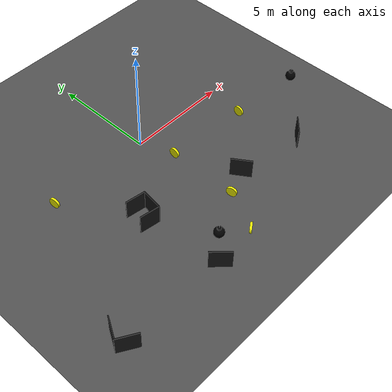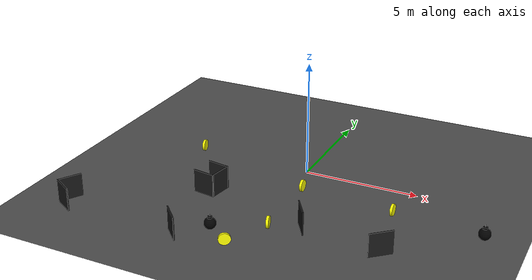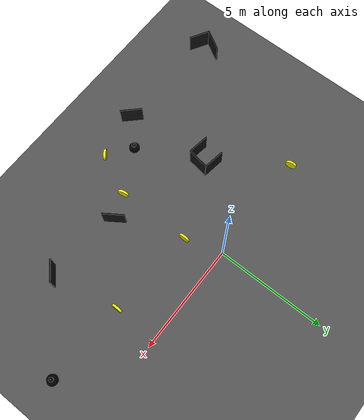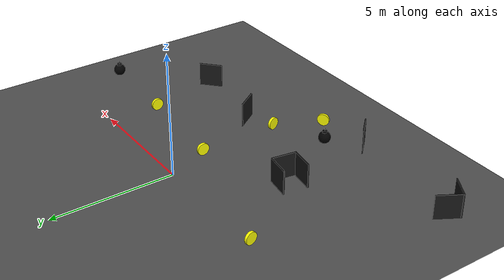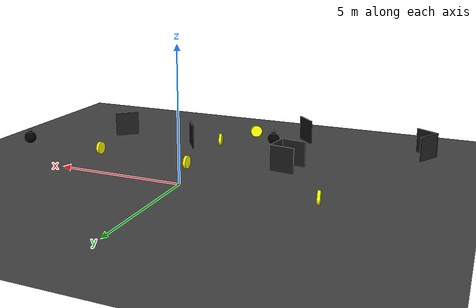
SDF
<sdf version="1.6">
 <world name="default">
  <model name="labrob_ground">
   <static>1</static>
   <link name="link">
    <collision name="collision">
     <geometry><plane><normal>0 0 1</normal><size>20 20</size></plane></geometry>
     <surface><contact><collide_bitmask>2</collide_bitmask></contact></surface>
    </collision>
    <visual name="visual">
     <cast_shadows>0</cast_shadows>
     <geometry><plane><normal>0 0 1</normal><size>20 20</size></plane></geometry>
     <material>
      <script>
       <uri>model://labrob_ground/materials/scripts/</uri>
       <uri>model://labrob_ground/materials/textures/</uri>
       <name>Labrob/AsphaltGround</name>
      </script>
     </material>
    </visual>
   </link>
  </model>
  <model name="coin_1">
   <link name="chassis">
    <pose>0 0 0.26 0 -0 0</pose>
    <collision name="box_collision">
     <geometry><sphere><radius>0.25</radius></sphere></geometry>
     <surface>
      <contact><collide_bitmask>1</collide_bitmask><ode><min_depth>10</min_depth><kp>1</kp></ode></contact>
     </surface>
    </collision>
    <visual name="visual">
     <pose>0 0 0 0 1.57 0</pose>
     <geometry><cylinder><radius>0.25</radius><length>0.1</length></cylinder></geometry>
     <material>
      <ambient>1 1 0 1</ambient>
      <diffuse>1 1 0 1</diffuse>
      <specular>0.1 0.1 0.1 1</specular>
      <emissive>0 0 0 0</emissive>
     </material>
    </visual>
    <sensor name="contact_sensor_1" type="contact">
     <plugin name="my_contact_plugin" filename="libgazebo_ros_bumper.so">
      <bumperTopicName>coin_bumper</bumperTopicName>
      <frameName>world</frameName>
     </plugin>
     <contact><collision>box_collision</collision><topic>__default_topic__</topic></contact>
    </sensor>
    <inertial>
     <inertia><ixx>1</ixx><ixy>0</ixy><ixz>0</ixz><iyy>1</iyy><iyz>0</iyz><izz>1</izz></inertia>
     <mass>1</mass>
    </inertial>
   </link>
   <joint name="coin_hinge" type="revolute">
    <pose>0 0 0.26 0 -0 0</pose>
    <child>chassis</child>
    <parent>world</parent>
    <axis>
     <xyz>0 0 1</xyz>
     <use_parent_model_frame>1</use_parent_model_frame>
     <limit><lower>-1e+16</lower><upper>1e+16</upper></limit>
     <dynamics><spring_reference>0</spring_reference><spring_stiffness>0</spring_stiffness></dynamics>
    </axis>
   </joint>
   <pose>0.535499 -1.67279 0 0 0 -3.13571</pose>
  </model>
  <model name="coin_2">
   <link name="chassis">
    <pose>0 0 0.26 0 -0 0</pose>
    <collision name="box_collision">
     <geometry><sphere><radius>0.25</radius></sphere></geometry>
     <surface>
      <contact><collide_bitmask>1</collide_bitmask><ode><min_depth>10</min_depth><kp>1</kp></ode></contact>
     </surface>
    </collision>
    <visual name="visual">
     <pose>0 0 0 0 1.57 0</pose>
     <geometry><cylinder><radius>0.25</radius><length>0.1</length></cylinder></geometry>
     <material>
      <ambient>1 1 0 1</ambient>
      <diffuse>1 1 0 1</diffuse>
      <specular>0.1 0.1 0.1 1</specular>
      <emissive>0 0 0 0</emissive>
     </material>
    </visual>
    <sensor name="contact_sensor_1" type="contact">
     <plugin name="my_contact_plugin" filename="libgazebo_ros_bumper.so">
      <bumperTopicName>coin_bumper</bumperTopicName>
      <frameName>world</frameName>
     </plugin>
     <contact><collision>box_collision</collision><topic>__default_topic__</topic></contact>
    </sensor>
    <inertial>
     <inertia><ixx>1</ixx><ixy>0</ixy><ixz>0</ixz><iyy>1</iyy><iyz>0</iyz><izz>1</izz></inertia>
     <mass>1</mass>
    </inertial>
   </link>
   <joint name="coin_hinge" type="revolute">
    <pose>0 0 0.26 0 -0 0</pose>
    <child>chassis</child>
    <parent>world</parent>
    <axis>
     <xyz>0 0 1</xyz>
     <use_parent_model_frame>1</use_parent_model_frame>
     <limit><lower>-1e+16</lower><upper>1e+16</upper></limit>
     <dynamics><spring_reference>0</spring_reference><spring_stiffness>0</spring_stiffness></dynamics>
    </axis>
   </joint>
   <pose>0.581038 -5.03889 0 0 0 -2.89527</pose>
  </model>
  <model name="coin_3">
   <link name="chassis">
    <pose>0 0 0.26 0 -0 0</pose>
    <collision name="box_collision">
     <geometry><sphere><radius>0.25</radius></sphere></geometry>
     <surface>
      <contact><collide_bitmask>1</collide_bitmask><ode><min_depth>10</min_depth><kp>1</kp></ode></contact>
     </surface>
    </collision>
    <visual name="visual">
     <pose>0 0 0 0 1.57 0</pose>
     <geometry><cylinder><radius>0.25</radius><length>0.1</length></cylinder></geometry>
     <material>
      <ambient>1 1 0 1</ambient>
      <diffuse>1 1 0 1</diffuse>
      <specular>0.1 0.1 0.1 1</specular>
      <emissive>0 0 0 0</emissive>
     </material>
    </visual>
    <sensor name="contact_sensor_1" type="contact">
     <plugin name="my_contact_plugin" filename="libgazebo_ros_bumper.so">
      <bumperTopicName>coin_bumper</bumperTopicName>
      <frameName>world</frameName>
     </plugin>
     <contact><collision>box_collision</collision><topic>__default_topic__</topic></contact>
    </sensor>
    <inertial>
     <inertia><ixx>1</ixx><ixy>0</ixy><ixz>0</ixz><iyy>1</iyy><iyz>0</iyz><izz>1</izz></inertia>
     <mass>1</mass>
    </inertial>
   </link>
   <joint name="coin_hinge" type="revolute">
    <pose>0 0 0.26 0 -0 0</pose>
    <child>chassis</child>
    <parent>world</parent>
    <axis>
     <xyz>0 0 1</xyz>
     <use_parent_model_frame>1</use_parent_model_frame>
     <limit><lower>-1e+16</lower><upper>1e+16</upper></limit>
     <dynamics><spring_reference>0</spring_reference><spring_stiffness>0</spring_stiffness></dynamics>
    </axis>
   </joint>
   <pose>-0.341977 -6.89468 0 0 -0 2.17125</pose>
  </model>
  <model name="coin_4">
   <link name="chassis">
    <pose>0 0 0.26 0 -0 0</pose>
    <collision name="box_collision">
     <geometry><sphere><radius>0.25</radius></sphere></geometry>
     <surface>
      <contact><collide_bitmask>1</collide_bitmask><ode><min_depth>10</min_depth><kp>1</kp></ode></contact>
     </surface>
    </collision>
    <visual name="visual">
     <pose>0 0 0 0 1.57 0</pose>
     <geometry><cylinder><radius>0.25</radius><length>0.1</length></cylinder></geometry>
     <material>
      <ambient>1 1 0 1</ambient>
      <diffuse>1 1 0 1</diffuse>
      <specular>0.1 0.1 0.1 1</specular>
      <emissive>0 0 0 0</emissive>
     </material>
    </visual>
    <sensor name="contact_sensor_1" type="contact">
     <plugin name="my_contact_plugin" filename="libgazebo_ros_bumper.so">
      <bumperTopicName>coin_bumper</bumperTopicName>
      <frameName>world</frameName>
     </plugin>
     <contact><collision>box_collision</collision><topic>__default_topic__</topic></contact>
    </sensor>
    <inertial>
     <inertia><ixx>1</ixx><ixy>0</ixy><ixz>0</ixz><iyy>1</iyy><iyz>0</iyz><izz>1</izz></inertia>
     <mass>1</mass>
    </inertial>
   </link>
   <joint name="coin_hinge" type="revolute">
    <pose>0 0 0.26 0 -0 0</pose>
    <child>chassis</child>
    <parent>world</parent>
    <axis>
     <xyz>0 0 1</xyz>
     <use_parent_model_frame>1</use_parent_model_frame>
     <limit><lower>-1e+16</lower><upper>1e+16</upper></limit>
     <dynamics><spring_reference>0</spring_reference><spring_stiffness>0</spring_stiffness></dynamics>
    </axis>
   </joint>
   <pose>-5.09801 -0.010363 0 0 -0 0.166259</pose>
  </model>
  <model name="bomb_1">
   <link name="chassis">
    <pose>0 0 0.25 0 -0 0</pose>
    <collision name="box_collision">
     <geometry><sphere><radius>0.25</radius></sphere></geometry>
     <surface>
      <contact><collide_bitmask>1</collide_bitmask><ode><min_depth>10</min_depth><kp>1</kp></ode></contact>
     </surface>
    </collision>
    <visual name="visual">
     <pose>0 0 0.2 0 -0 0</pose>
     <geometry><cylinder><radius>0.1</radius><length>0.2</length></cylinder></geometry>
     <material>
      <ambient>0 0 0 1</ambient>
      <diffuse>0 0 0 1</diffuse>
      <specular>0.1 0.1 0.1 1</specular>
      <emissive>0 0 0 0</emissive>
     </material>
    </visual>
    <visual name="visual2">
     <geometry><sphere><radius>0.25</radius></sphere></geometry>
     <material>
      <ambient>0 0 0 1</ambient>
      <diffuse>0 0 0 1</diffuse>
      <specular>0.1 0.1 0.1 1</specular>
      <emissive>0 0 0 0</emissive>
     </material>
    </visual>
    <visual name="visual3">
     <pose>0 0 0.3 0 -0 0</pose>
     <geometry><cylinder><radius>0.01</radius><length>0.2</length></cylinder></geometry>
     <material>
      <ambient>1 1 1 1</ambient>
      <diffuse>1 1 1 1</diffuse>
      <specular>0.1 0.1 0.1 1</specular>
      <emissive>0 0 0 0</emissive>
     </material>
    </visual>
    <sensor name="contact_sensor_1" type="contact">
     <plugin name="my_contact_plugin" filename="libgazebo_ros_bumper.so">
      <bumperTopicName>bomb_bumper</bumperTopicName>
      <frameName>world</frameName>
     </plugin>
     <contact><collision>box_collision</collision><topic>__default_topic__</topic></contact>
    </sensor>
    <inertial>
     <inertia><ixx>1</ixx><ixy>0</ixy><ixz>0</ixz><iyy>1</iyy><iyz>0</iyz><izz>1</izz></inertia>
     <mass>1</mass>
    </inertial>
   </link>
   <joint name="bomb_hinge" type="revolute">
    <pose>0 0 0.2 0 -0 0</pose>
    <child>chassis</child>
    <parent>world</parent>
    <axis>
     <xyz>0 0 0</xyz>
     <use_parent_model_frame>1</use_parent_model_frame>
     <limit><lower>-1e+16</lower><upper>1e+16</upper></limit>
     <dynamics><spring_reference>0</spring_reference><spring_stiffness>0</spring_stiffness></dynamics>
    </axis>
   </joint>
   <pose>-1.42414 -6.08574 0 0 -0 0</pose>
  </model>
  <model name="wall_1_0">
   <static>1</static>
   <link name="chassis">
    <pose>0 0 0.5 0 -0 0</pose>
    <collision name="barrier_collision"><geometry><box><size>1 0.05 1</size></box></geometry></collision>
    <visual name="visual">
     <geometry><box><size>1 0.05 1</size></box></geometry>
     <material>
      <ambient>0.1 0.1 0.1 1</ambient>
      <diffuse>0.1 0.1 0.1 1</diffuse>
      <specular>0.1 0.1 0.1 1</specular>
      <emissive>0 0 0 0</emissive>
     </material>
    </visual>
    <sensor name="contact_sensor_1" type="contact">
     <plugin name="my_contact_plugin" filename="libgazebo_ros_bumper.so">
      <bumperTopicName>obstacle_bumper</bumperTopicName>
      <frameName>world</frameName>
     </plugin>
     <contact><collision>barrier_collision</collision><topic>__default_topic__</topic></contact>
    </sensor>
   </link>
   <pose>1.74282 -4.55571 0 0 0 -0.982297</pose>
  </model>
  <model name="wall_1_1">
   <static>1</static>
   <link name="chassis">
    <pose>0 0 0.5 0 -0 0</pose>
    <collision name="barrier_collision"><geometry><box><size>1 0.05 1</size></box></geometry></collision>
    <visual name="visual">
     <geometry><box><size>1 0.05 1</size></box></geometry>
     <material>
      <ambient>0.1 0.1 0.1 1</ambient>
      <diffuse>0.1 0.1 0.1 1</diffuse>
      <specular>0.1 0.1 0.1 1</specular>
      <emissive>0 0 0 0</emissive>
     </material>
    </visual>
    <sensor name="contact_sensor_1" type="contact">
     <plugin name="my_contact_plugin" filename="libgazebo_ros_bumper.so">
      <bumperTopicName>obstacle_bumper</bumperTopicName>
      <frameName>world</frameName>
     </plugin>
     <contact><collision>barrier_collision</collision><topic>__default_topic__</topic></contact>
    </sensor>
   </link>
   <pose>5.17082 -5.00226 0 0 0 -2.40649</pose>
  </model>
  <model name="wall_1_2">
   <static>1</static>
   <link name="chassis">
    <pose>0 0 0.5 0 -0 0</pose>
    <collision name="barrier_collision"><geometry><box><size>1 0.05 1</size></box></geometry></collision>
    <visual name="visual">
     <geometry><box><size>1 0.05 1</size></box></geometry>
     <material>
      <ambient>0.1 0.1 0.1 1</ambient>
      <diffuse>0.1 0.1 0.1 1</diffuse>
      <specular>0.1 0.1 0.1 1</specular>
      <emissive>0 0 0 0</emissive>
     </material>
    </visual>
    <sensor name="contact_sensor_1" type="contact">
     <plugin name="my_contact_plugin" filename="libgazebo_ros_bumper.so">
      <bumperTopicName>obstacle_bumper</bumperTopicName>
      <frameName>world</frameName>
     </plugin>
     <contact><collision>barrier_collision</collision><topic>__default_topic__</topic></contact>
    </sensor>
   </link>
   <pose>-2.54272 -7.13994 0 0 0 -0.796447</pose>
  </model>
  <model name="wall_2_0">
   <static>1</static>
   <link name="chassis">
    <pose>0 0 0.5 0 -0 0</pose>
    <collision name="barrier_collision"><geometry><box><size>1 0.05 1</size></box></geometry></collision>
    <visual name="visual">
     <geometry><box><size>1 0.05 1</size></box></geometry>
     <material>
      <ambient>0.1 0.1 0.1 1</ambient>
      <diffuse>0.1 0.1 0.1 1</diffuse>
      <specular>0.1 0.1 0.1 1</specular>
      <emissive>0 0 0 0</emissive>
     </material>
    </visual>
    <collision name="barrier_collision2">
     <pose>-0.475 0.525 0 0 -0 1.57</pose>
     <geometry><box><size>1 0.05 1</size></box></geometry>
    </collision>
    <visual name="visual2">
     <pose>-0.475 0.525 0 0 -0 1.57</pose>
     <geometry><box><size>1 0.05 1</size></box></geometry>
     <material>
      <ambient>0.1 0.1 0.1 1</ambient>
      <diffuse>0.1 0.1 0.1 1</diffuse>
      <specular>0.1 0.1 0.1 1</specular>
      <emissive>0 0 0 0</emissive>
     </material>
    </visual>
    <sensor name="contact_sensor_1" type="contact">
     <plugin name="my_contact_plugin" filename="libgazebo_ros_bumper.so">
      <bumperTopicName>obstacle_bumper</bumperTopicName>
      <frameName>world</frameName>
     </plugin>
     <contact><collision>barrier_collision</collision><topic>__default_topic__</topic></contact>
    </sensor>
    <sensor name="contact_sensor_2" type="contact">
     <plugin name="my_contact_plugin" filename="libgazebo_ros_bumper.so">
      <bumperTopicName>obstacle_bumper</bumperTopicName>
      <frameName>world</frameName>
     </plugin>
     <contact><collision>barrier_collision2</collision><topic>__default_topic__</topic></contact>
    </sensor>
   </link>
   <pose>-7.64072 -7.1503 0 0 0 -0.530965</pose>
  </model>
  <model name="wall_3_0">
   <static>1</static>
   <link name="chassis">
    <pose>0 0 0.5 0 -0 0</pose>
    <collision name="collision"><geometry><box><size>1 0.05 1</size></box></geometry></collision>
    <visual name="visual">
     <geometry><box><size>1 0.05 1</size></box></geometry>
     <material>
      <ambient>0.1 0.1 0.1 1</ambient>
      <diffuse>0.1 0.1 0.1 1</diffuse>
      <specular>0.1 0.1 0.1 1</specular>
      <emissive>0 0 0 0</emissive>
     </material>
    </visual>
    <collision name="collision2">
     <pose>-0.475 0.525 0 0 -0 1.57</pose>
     <geometry><box><size>1 0.05 1</size></box></geometry>
    </collision>
    <visual name="visual2">
     <pose>-0.475 0.525 0 0 -0 1.57</pose>
     <geometry><box><size>1 0.05 1</size></box></geometry>
     <material>
      <ambient>0.1 0.1 0.1 1</ambient>
      <diffuse>0.1 0.1 0.1 1</diffuse>
      <specular>0.1 0.1 0.1 1</specular>
      <emissive>0 0 0 0</emissive>
     </material>
    </visual>
    <collision name="collision3">
     <pose>0 1 0 0 -0 0</pose>
     <geometry><box><size>1 0.05 1</size></box></geometry>
    </collision>
    <visual name="visual3">
     <pose>0 1 0 0 -0 0</pose>
     <geometry><box><size>1 0.05 1</size></box></geometry>
     <material>
      <ambient>0.1 0.1 0.1 1</ambient>
      <diffuse>0.1 0.1 0.1 1</diffuse>
      <specular>0.1 0.1 0.1 1</specular>
      <emissive>0 0 0 0</emissive>
     </material>
    </visual>
    <sensor name="contact_sensor_1" type="contact">
     <plugin name="my_contact_plugin" filename="libgazebo_ros_bumper.so">
      <bumperTopicName>obstacle_bumper</bumperTopicName>
      <frameName>world</frameName>
     </plugin>
     <contact><collision>collision</collision><topic>__default_topic__</topic></contact>
    </sensor>
    <sensor name="contact_sensor_2" type="contact">
     <plugin name="my_contact_plugin" filename="libgazebo_ros_bumper.so">
      <bumperTopicName>obstacle_bumper</bumperTopicName>
      <frameName>world</frameName>
     </plugin>
     <contact><collision>collision2</collision><topic>__default_topic__</topic></contact>
    </sensor>
    <sensor name="contact_sensor_3" type="contact">
     <plugin name="my_contact_plugin" filename="libgazebo_ros_bumper.so">
      <bumperTopicName>obstacle_bumper</bumperTopicName>
      <frameName>world</frameName>
     </plugin>
     <contact><collision>collision3</collision><topic>__default_topic__</topic></contact>
    </sensor>
   </link>
   <pose>-2.90066 -2.71729 0 0 -0 2.99118</pose>
  </model>
  <model name="bomb_5">
   <link name="chassis">
    <pose>0 0 0.25 0 -0 0</pose>
    <collision name="box_collision">
     <geometry><sphere><radius>0.25</radius></sphere></geometry>
     <surface>
      <contact><collide_bitmask>1</collide_bitmask><ode><min_depth>10</min_depth><kp>1</kp></ode></contact>
     </surface>
    </collision>
    <visual name="visual">
     <pose>0 0 0.2 0 -0 0</pose>
     <geometry><cylinder><radius>0.1</radius><length>0.2</length></cylinder></geometry>
     <material>
      <ambient>0 0 0 1</ambient>
      <diffuse>0 0 0 1</diffuse>
      <specular>0.1 0.1 0.1 1</specular>
      <emissive>0 0 0 0</emissive>
     </material>
    </visual>
    <visual name="visual2">
     <geometry><sphere><radius>0.25</radius></sphere></geometry>
     <material>
      <ambient>0 0 0 1</ambient>
      <diffuse>0 0 0 1</diffuse>
      <specular>0.1 0.1 0.1 1</specular>
      <emissive>0 0 0 0</emissive>
     </material>
    </visual>
    <visual name="visual3">
     <pose>0 0 0.3 0 -0 0</pose>
     <geometry><cylinder><radius>0.01</radius><length>0.2</length></cylinder></geometry>
     <material>
      <ambient>1 1 1 1</ambient>
      <diffuse>1 1 1 1</diffuse>
      <specular>0.1 0.1 0.1 1</specular>
      <emissive>0 0 0 0</emissive>
     </material>
    </visual>
    <sensor name="contact_sensor_1" type="contact">
     <plugin name="my_contact_plugin" filename="libgazebo_ros_bumper.so">
      <bumperTopicName>bomb_bumper</bumperTopicName>
      <frameName>world</frameName>
     </plugin>
     <contact><collision>box_collision</collision><topic>__default_topic__</topic></contact>
    </sensor>
    <inertial>
     <inertia><ixx>1</ixx><ixy>0</ixy><ixz>0</ixz><iyy>1</iyy><iyz>0</iyz><izz>1</izz></inertia>
     <mass>1</mass>
    </inertial>
   </link>
   <joint name="bomb_hinge" type="revolute">
    <pose>0 0 0.2 0 -0 0</pose>
    <child>chassis</child>
    <parent>world</parent>
    <axis>
     <xyz>0 0 0</xyz>
     <use_parent_model_frame>1</use_parent_model_frame>
     <limit><lower>-1e+16</lower><upper>1e+16</upper></limit>
     <dynamics><spring_reference>0</spring_reference><spring_stiffness>0</spring_stiffness></dynamics>
    </axis>
   </joint>
   <pose>8.33782 -2.17598 0 0 -0 0</pose>
  </model>
  <model name="coin">
   <link name="chassis">
    <pose>0 0 0.26 0 -0 0</pose>
    <collision name="box_collision">
     <geometry><sphere><radius>0.25</radius></sphere></geometry>
     <surface>
      <contact><collide_bitmask>1</collide_bitmask><ode><min_depth>10</min_depth><kp>1</kp></ode></contact>
     </surface>
    </collision>
    <visual name="visual">
     <pose>0 0 0 0 1.57 0</pose>
     <geometry><cylinder><radius>0.25</radius><length>0.1</length></cylinder></geometry>
     <material>
      <ambient>1 1 0 1</ambient>
      <diffuse>1 1 0 1</diffuse>
      <specular>0.1 0.1 0.1 1</specular>
      <emissive>0 0 0 0</emissive>
     </material>
    </visual>
    <sensor name="contact_sensor_1" type="contact">
     <plugin name="my_contact_plugin" filename="libgazebo_ros_bumper.so">
      <bumperTopicName>coin_bumper</bumperTopicName>
      <frameName>world</frameName>
     </plugin>
     <contact><collision>box_collision</collision><topic>__default_topic__</topic></contact>
    </sensor>
    <inertial>
     <inertia><ixx>1</ixx><ixy>0</ixy><ixz>0</ixz><iyy>1</iyy><iyz>0</iyz><izz>1</izz></inertia>
     <mass>1</mass>
    </inertial>
   </link>
   <joint name="coin_hinge" type="revolute">
    <pose>0 0 0.26 0 -0 0</pose>
    <child>chassis</child>
    <parent>world</parent>
    <axis>
     <xyz>0 0 1</xyz>
     <use_parent_model_frame>1</use_parent_model_frame>
     <limit><lower>-1e+16</lower><upper>1e+16</upper></limit>
     <dynamics><spring_reference>0</spring_reference><spring_stiffness>0</spring_stiffness></dynamics>
    </axis>
   </joint>
   <pose>4.60746 -1.98293 0 0 -0 0</pose>
  </model>
 </world>
</sdf>
